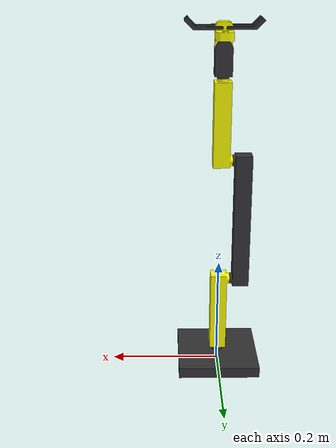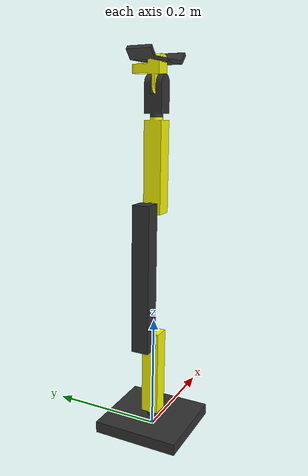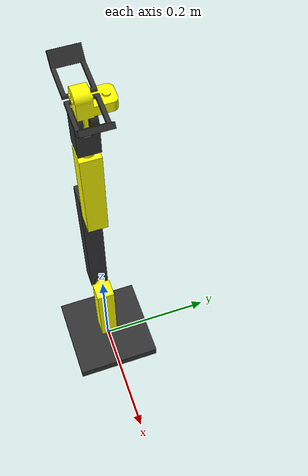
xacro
<?xml version="1.0" ?>
<robot name="rhino" xmlns:xacro="http://www.ros.org/wiki/xacro">

  <xacro:include filename="$(find rhino)/urdf/ros2_control.xacro" />
  <xacro:include filename="$(find rhino)/urdf/robot.trans" />
  <xacro:include filename="$(find rhino)/urdf/robot.gazebo" />

  <material name="Yellow">
    <color rgba="1 1 0 1"/> <!-- Yellow: Full red and green, no blue -->
  </material>
  <material name="Black">
    <color rgba="0.2 0.2 0.2 1"/> <!-- Black: No red, green, or blue -->
  </material>

  <!--All the links in the robot-->
  <link name="base_link">
    <inertial>
      <origin xyz="1.4561718222937472e-14 1.007034455251554e-17 0.01004348145239828" rpy="0 0 0"/>
      <mass value="3.2287311937365817"/>
      <inertia ixx="0.006142115448044902" iyy="0.006142115447754821" izz="0.012066186559831868" ixy="-2.6011548470701015e-18" iyz="3.26558130767115e-19" ixz="2.369462837125797e-18"/>
    </inertial>
    <visual>
      <origin xyz="0 0 0" rpy="0 0 0"/>
      <geometry>
        <mesh filename="file://$(find rhino)/meshes/base_link.stl" scale="0.001 0.001 0.001"/>
      </geometry>
      <material name="Black"/>
      <material/>
    </visual>
    <collision>
      <origin xyz="0 0 0" rpy="0 0 0"/>
      <geometry>
        <mesh filename="file://$(find rhino)/meshes/base_link.stl" scale="0.001 0.001 0.001"/>
      </geometry>
    </collision>
  </link>

  <link name="link1">
    <inertial>
      <origin xyz="-0.00019899101487736104 0.0 0.07985780670622619" rpy="0 0 0"/>
      <mass value="1.0844115023306808"/>
      <inertia ixx="0.002193592052919831" iyy="0.002197042825748048" izz="0.00016364634802497455" ixy="-2.245315045001917e-16" iyz="1.836042429204099e-15" ixz="1.4055834137000378e-05"/>
    </inertial>
    <visual>
      <origin xyz="-0.0 -0.0 -0.025" rpy="0 0 0"/>
      <geometry>
        <mesh filename="file://$(find rhino)/meshes/link1.stl" scale="0.001 0.001 0.001"/>
      </geometry>
      <material name="Yellow"/>
      <material/>
    </visual>
    <collision>
      <origin xyz="-0.0 -0.0 -0.025" rpy="0 0 0"/>
      <geometry>
        <mesh filename="file://$(find rhino)/meshes/link1.stl" scale="0.001 0.001 0.001"/>
      </geometry>
    </collision>
  </link>

  <link name="link2">
    <inertial>
      <origin xyz="-0.01975901863926532 7.176481631177012e-15 0.11499999999999982" rpy="0 0 0"/>
      <mass value="1.7909115023306803"/>
      <inertia ixx="0.009659068943400684" iyy="0.009665952367199027" izz="0.00027305399895490023" ixy="-2.0688824975298267e-16" iyz="2.1659605152939336e-18" ixz="0.0"/>
    </inertial>
    <visual>
      <origin xyz="0.02 -0.0 -0.169995" rpy="0 0 0"/>
      <geometry>
        <mesh filename="file://$(find rhino)/meshes/link2.stl" scale="0.001 0.001 0.001"/>
      </geometry>
      <material name="Black"/>
      <material/>
    </visual>
    <collision>
      <origin xyz="0.02 -0.0 -0.169995" rpy="0 0 0"/>
      <geometry>
        <mesh filename="file://$(find rhino)/meshes/link2.stl" scale="0.001 0.001 0.001"/>
      </geometry>
    </collision>
  </link>

  <link name="link3">
    <inertial>
      <origin xyz="0.019801008985122832 3.552713678800501e-17 0.06513719329377377" rpy="0 0 0"/>
      <mass value="1.0844115023306804"/>
      <inertia ixx="0.002193592052929849" iyy="0.002197042825807821" izz="0.0001636463480346437" ixy="2.632484172641585e-16" iyz="9.132035465779633e-16" ixz="-1.405583413699823e-05"/>
    </inertial>
    <visual>
      <origin xyz="0.02 0.0 -0.399995" rpy="0 0 0"/>
      <geometry>
        <mesh filename="file://$(find rhino)/meshes/link3.stl" scale="0.001 0.001 0.001"/>
      </geometry>
      <material name="Yellow"/>
      <material/>
    </visual>
    <collision>
      <origin xyz="0.02 0.0 -0.399995" rpy="0 0 0"/>
      <geometry>
        <mesh filename="file://$(find rhino)/meshes/link3.stl" scale="0.001 0.001 0.001"/>
      </geometry>
    </collision>
  </link>

  <link name="link4">
    <inertial>
      <origin xyz="-1.7774670624248756e-14 -3.9968028886505634e-17 0.03036984704223289" rpy="0 0 0"/>
      <mass value="0.3627498825747104"/>
      <inertia ixx="0.0001334926762944777" iyy="0.00012837610187425852" izz="5.498209237391845e-05" ixy="-4.836131495267156e-17" iyz="-1.7055447087947966e-19" ixz="-1.711015644877422e-16"/>
    </inertial>
    <visual>
      <origin xyz="-0.0 -0.0 -0.54499" rpy="0 0 0"/>
      <geometry>
        <mesh filename="file://$(find rhino)/meshes/link4.stl" scale="0.001 0.001 0.001"/>
      </geometry>
      <material name="Black"/>
      <material/>
    </visual>
    <collision>
      <origin xyz="-0.0 -0.0 -0.54499" rpy="0 0 0"/>
      <geometry>
        <mesh filename="file://$(find rhino)/meshes/link4.stl" scale="0.001 0.001 0.001"/>
      </geometry>
    </collision>
  </link>

  <link name="link5">
    <inertial>
      <origin xyz="1.922018100231071e-14 -0.0025000000000000443 0.02415285334526429" rpy="0 0 0"/>
      <mass value="0.16763744128735503"/>
      <inertia ixx="3.636885280183799e-05" iyy="4.324340311050168e-05" izz="1.636846951695219e-05" ixy="8.881784196986944e-20" iyz="-3.515071461245108e-20" ixz="-3.441818080857435e-17"/>
    </inertial>
    <visual>
      <origin xyz="-0.0 -0.0025 -0.59499" rpy="0 0 0"/>
      <geometry>
        <mesh filename="file://$(find rhino)/meshes/link5.stl" scale="0.001 0.001 0.001"/>
      </geometry>
      <material name="Yellow"/>
      <material/>
    </visual>
    <collision>
      <origin xyz="-0.0 -0.0025 -0.59499" rpy="0 0 0"/>
      <geometry>
        <mesh filename="file://$(find rhino)/meshes/link5.stl" scale="0.001 0.001 0.001"/>
      </geometry>
    </collision>
  </link>

  <link name="link6a">
    <inertial>
      <origin xyz="0.042591963231282365 -0.012500000000000067 0.004923464146475709" rpy="0 0 0"/>
      <mass value="0.06361014975418272"/>
      <inertia ixx="1.330070565689137e-05" iyy="1.935368905694318e-05" izz="2.9554000777043572e-05" ixy="-6.843405230743754e-20" iyz="4.337401069289531e-18" ixz="-3.6220617270069696e-06"/>
    </inertial>
    <visual>
      <origin xyz="-0.005 -0.0125 -0.62999" rpy="0 0 0"/>
      <geometry>
        <mesh filename="file://$(find rhino)/meshes/link6a.stl" scale="0.001 0.001 0.001"/>
      </geometry>
      <material name="Black"/>
      <material/>
    </visual>
    <collision>
      <origin xyz="-0.005 -0.0125 -0.62999" rpy="0 0 0"/>
      <geometry>
        <mesh filename="file://$(find rhino)/meshes/link6a.stl" scale="0.001 0.001 0.001"/>
      </geometry>
    </collision>
  </link>

  <link name="link6b">
    <inertial>
      <origin xyz="-0.042591963231282365 0.01249999999999996 0.00492346414647582" rpy="0 0 0"/>
      <mass value="0.06361014975418278"/>
      <inertia ixx="1.3300705656884432e-05" iyy="1.935368905693971e-05" izz="2.95540007770433e-05" ixy="-1.2230273797544885e-20" iyz="-4.348110604092076e-18" ixz="3.6220617270067527e-06"/>
    </inertial>
    <visual>
      <origin xyz="0.005 0.0125 -0.62999" rpy="0 0 0"/>
      <geometry>
        <mesh filename="file://$(find rhino)/meshes/link6b.stl" scale="0.001 0.001 0.001"/>
      </geometry>
      <material name="Black"/>
      <material/>
    </visual>
    <collision>
      <origin xyz="0.005 0.0125 -0.62999" rpy="0 0 0"/>
      <geometry>
        <mesh filename="file://$(find rhino)/meshes/link6b.stl" scale="0.001 0.001 0.001"/>
      </geometry>
    </collision>
  </link>

  <!--All the Joints in the robot-->
  <joint name="joint1" type="continuous">
    <origin xyz="0.0 0.0 0.025" rpy="0 0 0"/>
    <parent link="base_link"/>
    <child link="link1"/>
    <axis xyz="0.0 0.0 1.0"/>
  </joint>

  <joint name="joint2" type="continuous">
    <origin xyz="-0.02 0.0 0.144995" rpy="0 0 0"/>
    <parent link="link1"/>
    <child link="link2"/>
    <axis xyz="-1.0 0.0 0.0"/>
  </joint>

  <joint name="joint3" type="continuous">
    <origin xyz="0.0 -0.0 0.23" rpy="0 0 0"/>
    <parent link="link2"/>
    <child link="link3"/>
    <axis xyz="1.0 0.0 0.0"/>
  </joint>

  <joint name="joint4" type="continuous">
    <origin xyz="0.02 0.0 0.144995" rpy="0 0 0"/>
    <parent link="link3"/>
    <child link="link4"/>
    <axis xyz="-0.0 -0.0 1.0"/>
  </joint>

  <joint name="joint5" type="continuous">
    <origin xyz="0.0 0.0025 0.05" rpy="0 0 0"/>
    <parent link="link4"/>
    <child link="link5"/>
    <axis xyz="-0.0 -1.0 -0.0"/>
  </joint>

  <joint name="joint6a" type="continuous">
    <origin xyz="-0.005 -0.015 0.035" rpy="0 0 0"/>
    <parent link="link5"/>
    <child link="link6b"/>
    <axis xyz="-0.0 -1.0 -0.0"/>
  </joint>

  <joint name="joint6b" type="continuous">
    <origin xyz="0.005 0.01 0.035" rpy="0 0 0"/>
    <parent link="link5"/>
    <child link="link6a"/>
    <axis xyz="0.0 1.0 0.0"/>
  </joint>

</robot>
